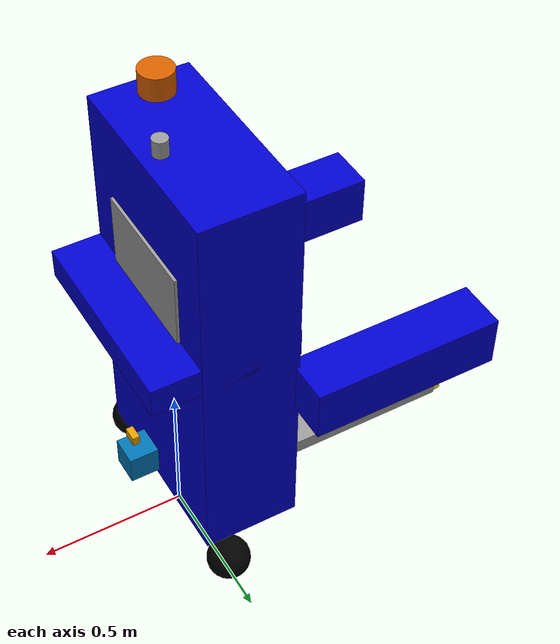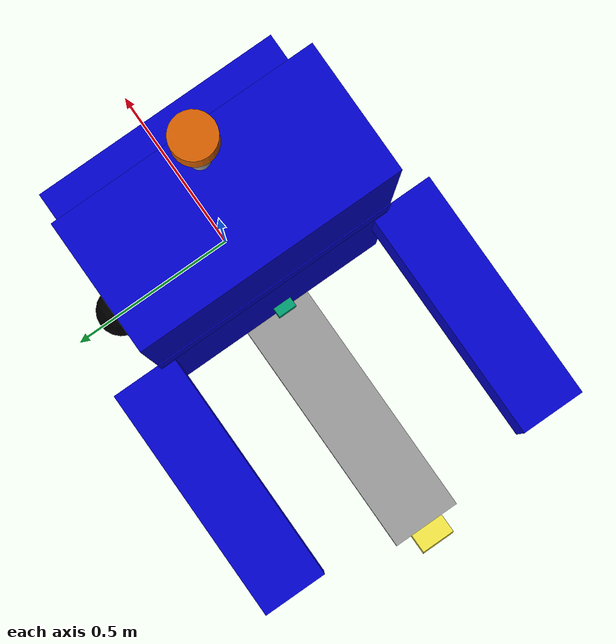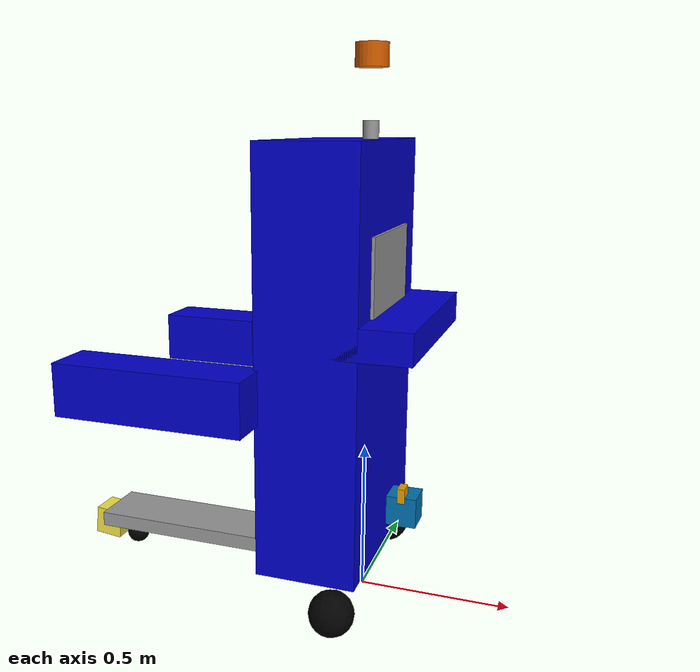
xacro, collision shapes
<?xml version="1.0"?>
<robot name="deliverybot"
    xmlns:xacro="http://wiki.ros.org/xacro">

    <!-- basic shapes -->
    <xacro:include filename="$(find urdf_basic_shapes)/urdf/basic_shapes.urdf.xacro"/>

    <link name="base_footprint"/>

    <!--cubic base_link -->
    <xacro:cube name="base_link" x=".325" y=".66" z="1.350" ori="-.0975 0 .75" rpy="0 0 0" rgb="Blue" m="10" friction="${standard_friction}"/>
    <joint name="base_joint" type="fixed">
        <parent link="base_footprint"/>
        <child link="base_link"/>
        <origin xyz="0 0 .075" rpy="0 0 0"/>
    </joint>

    <!-- cube -->
    <xacro:cube name="cube" x=".490" y=".66" z=".100" ori="-.0175 0 .780" rpy="0 0 0" rgb="Blue" m="10" friction="${standard_friction}"/>
    <joint name="cube_joint" type="fixed">
        <parent link="base_link"/>
        <child link="cube"/>
        <origin xyz="0 0 0.075" rpy="0 0 0"/>
    </joint>

    <!-- cylinder -->
    <xacro:cylinder_shape name="cylinder" r="0.025" h=".100" ori="0 0 0" rpy="0 0 0" rgb="Grey" m=".1" friction="${standard_friction}"/>
    <joint name="joint_cylinder" type="fixed">
        <parent link="base_link"/>
        <child link="cylinder"/>
        <origin xyz="0 0 1.43" rpy="0 0 0"/>
    </joint>

    <!-- hands -->
    <xacro:cube name="handR" x=".6365" y=".171" z=".175" ori="-${.6365/2}  0 ${.175/2}" rpy="0 0 0" rgb="Blue" m="10" friction="${standard_friction}"/>
    <joint name="handR_joint" type="fixed">
        <parent link="base_link"/>
        <child link="handR"/>
        <origin xyz="-.2475 -.3775 0.575" rpy="0 0 0"/>
    </joint>
    <xacro:cube name="handL" x=".6365" y=".171" z=".175" ori="-${.6365/2} 0 ${.175/2}" rpy="0 0 0" rgb="Blue" m="10" friction="${standard_friction}"/>
    <joint name="handL_joint" type="fixed">
        <parent link="base_link"/>
        <child link="handL"/>
        <origin xyz="-.2475 .3775 0.575" rpy="0 0 0"/>
    </joint>

    <!-- tail -->
    <xacro:cube name="tail" x="0.97" y=".2" z=".05" ori="-${0.97/2} 0 0" rpy="0 0 0" rgb="Grey" m="3" friction="${standard_friction}"/>
    <joint name="tail_joint" type="fixed">
        <parent link="base_link"/>
        <child link="tail"/>
        <origin xyz="0 0 0.05" rpy="0 0 0"/>
    </joint>

    <!-- cubic screen -->
    <xacro:cube name="screen" x=".15" y=".4" z=".3" ori="0 0 0" rpy="0 0 0" rgb="Grey" m=".1" friction="${standard_friction}"/>
    <joint name="screen_joint" type="fixed">
        <parent link="base_link"/>
        <child link="screen"/>
        <origin xyz="0 0 1" rpy="0 0 0"/>
    </joint>

    <!-- diff drive -->
    <!-- the parent link should be the center of wheel axis -->
    <xacro:include filename="$(find urdf_basic_shapes)/urdf/diff_wheel.urdf.xacro"/>
    <xacro:diff_wheel wheeldiam="0.145" h=".035" wheel_separation=".7" parent="base_link" friction="2000" rgb="Black" odom_topic="odom" pub_tf="false"/>

    <!-- caster wheel back -->
    <xacro:ball name="casterwheel_back" r="0.04" ori="0 0 0" rpy="0 0 0" rgb="Black" m="1" friction="${sliding_friction}"/>
    <joint name="joint_casterwheel_back" type="fixed">
        <parent link="base_link"/>
        <child link="casterwheel_back"/>
        <origin xyz="-.884 0 -.03" rpy="0 0 0"/>
    </joint>

    <!-- Hokuyo Laser Back-->
    <xacro:include filename="$(find urdf_basic_shapes)/sensors/hokuyo.urdf.xacro"/>
    <xacro:hokuyo name="scan_back" xyz="-0.98147 0 0.011" rpy="${pi} -${pi/30} ${pi}" parent="base_link" min_a="${-pi}" max_a="${pi}" topic="/lidarBack/scan"/>
    <!-- Hokuyo Laser Front-->
    <xacro:hokuyo name="scan_front" xyz=".14 0.0 0.23" rpy="0 0 0" parent="base_link" min_a="${-pi}" max_a="${pi}"  topic="/lidarFront/scan"/>

    <!-- TOP 3D Olei Lidar  -->
    <xacro:include filename="$(find urdf_basic_shapes)/sensors/velodyne.urdf.xacro"/>
    <xacro:velodyne16 name="olei_lidar" xyz="0 0 1.635" rpy="0 0 0" parent="base_link"/>
    <!-- add scan topic to velodyne lidar-->
    <!-- VERTICAL 3D Olei Lidar  -->

    <!-- imu -->
    <xacro:include filename="$(find urdf_basic_shapes)/sensors/imu.urdf.xacro"/>
    <xacro:imu name="imu" xyz="0 0 0" rpy="0 0 0" parent="base_link"/>

    <!-- depth_cam -->

    <!-- usb_cam -->
    <xacro:include filename="$(find urdf_basic_shapes)/sensors/usb_cam.urdf.xacro" />
    <xacro:usb_cam name="cameraF_down" xyz="0.140 -0.03 ${0.3625-0.075}" rpy="0.0 0.0 0.0" parent="base_link" rate="6" />
    <xacro:usb_cam name="cameraB" xyz="-.3 0 ${.7045-.075}" rpy="0 0 ${pi}" parent="base_link" rate="6" />

    <!-- Sonar -->

</robot>

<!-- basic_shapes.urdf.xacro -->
<robot name="basic_shapes" xmlns:xacro="http://wiki.ros.org/xacro">
  <!-- basic inertia -->
  <xacro:include filename="$(find urdf_basic_shapes)/urdf/inertia.urdf.xacro"/>
  <!-- basic material -->
  <xacro:include filename="$(find urdf_basic_shapes)/urdf/material.urdf.xacro"/>
  <!-- basic shapes gazebo-->
  <xacro:include filename="$(find urdf_basic_shapes)/urdf/basic_shapes.gazebo.xacro"/>

  <!-- constants -->
  <xacro:property name="update_rate" value="50" />

  <xacro:macro name="cube" params="name x y z ori rpy rgb m friction">
    <link name="${name}">
        <visual>
          <origin xyz="${ori}" rpy="${rpy}"/>
          <geometry>
              <box size="${x} ${y} ${z}"/>
          </geometry>
          <material name="${rgb}"/>
        </visual>
        <collision>
        <origin xyz="${ori}" rpy="${rpy}" />
        <geometry>
            <box size="${x} ${y} ${z}" />
        </geometry>
        </collision>
        <xacro:solid_cuboid_inertia m="${m}" h="${y}" d="${z}" w="${x}"/>
    </link>
    <xacro:gazebo_params name="${name}" rgb="${rgb}" friction="${friction}"/>
  </xacro:macro>

  <xacro:macro name="ball" params="name r ori rpy rgb m friction">
    <link name="${name}">
        <visual>
          <origin xyz="${ori}" rpy="${rpy}"/>
          <geometry>
              <sphere radius="${r}"/>
          </geometry>
          <material name="${rgb}"/>
        </visual>
        <collision>
        <origin xyz="${ori}" rpy="${rpy}" />
        <geometry>
            <sphere radius="${r}" />
        </geometry>
        </collision>
        <xacro:solid_sphere_inertia m="${m}" r="${r}"/>
    </link>
    <xacro:gazebo_params name="${name}" rgb="${rgb}" friction="${friction}"/>
  </xacro:macro>

  <xacro:macro name="cylinder_shape" params="name r h ori rpy rgb m friction">
    <link name="${name}">
        <visual>
          <origin xyz="${ori}" rpy="${rpy}"/>
          <geometry>
              <cylinder radius="${r}" length="${h}"/>
          </geometry>
          <material name="${rgb}"/>
        </visual>
        <collision>
        <origin xyz="${ori}" rpy="${rpy}" />
        <geometry>
            <cylinder radius="${r}" length="${h}" />
        </geometry>
        </collision>
        <xacro:solid_cylinder_inertia m="${m}" r="${r}" h="${h}"/>
    </link>
    <xacro:gazebo_params name="${name}" rgb="${rgb}" friction="${friction}"/>
  </xacro:macro>

  <xacro:macro name="wheel" params="name r h ori rpy rgb m friction">
    <link name="${name}">
        <visual>
          <origin xyz="${ori}" rpy="${rpy}"/>
          <geometry>
              <cylinder radius="${r}" length="${h}"/>
          </geometry>
          <material name="${rgb}"/>
        </visual>
        <collision>
        <origin xyz="${ori}" rpy="${rpy}" />
        <geometry>
            <sphere radius="${r}" />   <!--use shpere here to reduce the point of contract to a infinit small point-->
        </geometry>
        </collision>
        <xacro:solid_cylinder_inertia m="${m}" r="${r}" h="${h}"/>
    </link>
    <xacro:gazebo_params name="${name}" rgb="${rgb}" friction="${friction}"/>
  </xacro:macro>

</robot>

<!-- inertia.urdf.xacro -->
<robot xmlns:xacro="http://wiki.ros.org/xacro">
  <!-- source en.wikipedia.org/wiki/List_of_moments_of_inertia-->

  <!-- TODO Solid sphere of radius r and mass m-->
  <xacro:macro name="solid_sphere_inertia" params="m r">
  <inertial>
      <mass value="${m}" />
    <inertia  ixx="${(2*r*r*m)/5}" ixy = "0" ixz = "0"
              iyy="${(2*r*r*m)/5}" iyz = "0"
              izz="${(2*r*r*m)/5}"
     />
     </inertial>
  </xacro:macro>

  <!-- TODO Hollow sphere of radius r and mass m-->
  <xacro:macro name="hollow_sphere_inertia" params="m r">
  <inertial>
      <mass value="${m}" />
    <inertia  ixx="${(2*r*r*m)/3}" ixy = "0" ixz = "0"
              iyy="${(2*r*r*m)/3}" iyz = "0"
              izz="${(2*r*r*m)/3}"
     />
     </inertial>
  </xacro:macro>

  <!-- TODO Solid ellipsoid of semi-axes a, b, c and mass m-->
  <xacro:macro name="ellipsoid_semi_axes_inertia" params="a b c m r">
  <inertial>
      <mass value="${m}" />
    <inertia  ixx="${(m*(b*b+c*c))/5}" ixy = "0" ixz = "0"
              iyy="${(m*(a*a+c*c))/5}" iyz = "0"
              izz="${(m*(a*a+b*b))/5}"
     />
     </inertial>
  </xacro:macro>

  <!-- TODO Right circular cone with radius r, height h and mass m, about the apex -->
  <xacro:macro name="right_circular_cone_inertia" params="m r h">
  <inertial>
      <mass value="${m}" />
    <inertia  ixx="${((3*m*(h*h))/5)+((3*m*(r*r))/20)}" ixy = "0" ixz = "0"
              iyy="${((3*m*(h*h))/5)+((3*m*(r*r))/20)}" iyz = "0"
              izz="${(3*m*(r*r))/10}"
     />
     </inertial>
  </xacro:macro>

  <!-- TODO Solid cuboid of width w, height h, depth d, and mass m -->
  <!-- yes, axis in solid_cuboid_inertia are changed, w relates to X axis, d to Z axis, and h to Y axis -->
  <!-- Keep this comment -->
  <xacro:macro name="solid_cuboid_inertia" params="m h d w">
    <inertial>
      <mass value="${m}" />
        <inertia  ixx="${(m*(h*h+d*d))/12}" ixy = "0" ixz = "0"
                iyy="${(m*(w*w+d*d))/12}" iyz = "0"
                izz="${(m*(w*w+h*h))/12}"
        />
    </inertial>
  </xacro:macro>

  <!-- TODO Solid cylinder of radius r, height h and mass m -->
  <xacro:macro name="solid_cylinder_inertia" params="m r h">
  <inertial>
      <mass value="${m}" />
    <inertia  ixx="${m*(3*r*r+h*h)/12}" ixy = "0" ixz = "0"
              iyy="${m*(3*r*r+h*h)/12}" iyz = "0"
              izz="${m*r*r/2}"
     />
     </inertial>
  </xacro:macro>

    <!-- TODO Thick-walled cylindrical tube with open ends, of inner radius r1, outer radius r2, length h and mass m -->
    <xacro:macro name="thick_walled_cylinder_inertia" params="m r1 r2 h">
    <inertial>
      <mass value="${m}" />
    <inertia  ixx="${m*((3*(r1*r1+r2*r2))+(h*h))/12}" ixy = "0" ixz = "0"
              iyy="${m*((3*(r1*r1+r2*r2))+(h*h))/12}" iyz = "0"
              izz="${m*(r1*r1+r2*r2)/2}"
     />
     </inertial>
  </xacro:macro>

</robot>

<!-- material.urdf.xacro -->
<robot xmlns:xacro="http://wiki.ros.org/xacro">

  <material name="Red">
    <color rgba="1 0 0 1"/>
  </material>
  <material name="Green">
    <color rgba="0 1 0 1"/>
  </material>
  <material name="Blue">
    <color rgba="0 0 0.8 1"/>
  </material>
  <material name="Black">
    <color rgba="0 0 0 1"/>
  </material>
  <material name="White">
    <color rgba="1 1 1 1"/>
  </material>
  <material name="Gray">
    <color rgba="0.8 0.8 0.8 1"/>
  </material>
  <material name="Yellow">
    <color rgba="1 1 0 1"/>
  </material>
  <material name="Orange">
    <color rgba="1 0.5 0 1"/>
  </material>
  <material name="Brown">
    <color rgba="0.6 0.4 0.2 1"/>
  </material>
  <material name="Purple">
    <color rgba="0.5 0 0.5 1"/>
  </material>
  <material name="Cyan">
    <color rgba="0 1 1 1"/>
  </material>

</robot>

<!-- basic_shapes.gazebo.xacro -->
<robot name="basic_shapes"
  xmlns:xacro="http://www.ros.org/wiki/xacro">
  <xacro:arg name="laser_visual" default="true"/>

  <xacro:property name="update_rate" value="10" />

  <xacro:property name="standard_friction" value="0.2" />
  <xacro:property name="wheel_friction" value="10000.0" />
  <xacro:property name="sliding_friction" value="0.1" />

  <xacro:macro name="gazebo_params" params="name rgb friction">
    <gazebo reference="${name}">
      <material>Gazebo/${rgb}</material>
      <mu1>${friction}</mu1>
      <mu2>${friction}</mu2>
      <kp value="10000000.0" />
      <kd value="1.0" />
      <minDepth>0.001</minDepth>
      <maxVel>0.1</maxVel>
      <fdir1>1 0 0</fdir1>
    </gazebo>
  </xacro:macro>

  <!-- Gazebo plugin for ROS Control -->

</robot>

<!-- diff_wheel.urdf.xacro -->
<robot name="diff_wheel" xmlns:xacro="http://wiki.ros.org/xacro">

    <!-- differential drive macro -->
    <xacro:macro name="diff_wheel" params=" wheeldiam h wheel_separation parent friction rgb odom_topic:=odom pub_tf:=true">
        <xacro:wheel name="left_wheel" r="${wheeldiam/2}" h="${h}" ori="0 0 0" rpy="0 0 0" rgb="${rgb}" m="0.1" friction="${friction}"/>
        <joint name="left_wheel_joint" type="continuous">
            <axis xyz="0 0 1" rpy="0 0 0" />
            <parent link="${parent}"/>
            <child link="left_wheel"/>
            <origin xyz="0 ${wheel_separation/2} 0" rpy="${-pi/2} 0 0"/>
        </joint>

        <xacro:wheel name="right_wheel" r="${wheeldiam/2}" h="${h}" ori="0 0 0" rpy="0 0 0" rgb="${rgb}" m="0.1" friction="${friction}"/>
        <joint name="right_wheel_joint" type="continuous">
            <axis xyz="0 0 1" rpy="0 0 0" />
            <parent link="${parent}"/>
            <child link="right_wheel"/>
            <origin xyz="0 ${-wheel_separation/2} 0" rpy="${-pi/2} 0 0"/>
        </joint>

        <gazebo>
        <plugin name="diff_drive_controller" filename="libgazebo_ros_diff_drive.so">

            <!-- Plugin update rate in Hz -->
            <left_joint>left_wheel_joint</left_joint>
            <right_joint>right_wheel_joint</right_joint>

            <!-- kinematics -->
            <wheel_separation>${wheel_separation}</wheel_separation>
            <wheel_diameter>${wheeldiam}</wheel_diameter>

            <!-- limits -->
            <max_wheel_acceleration>1.0</max_wheel_acceleration>
            <max_wheel_torque>20</max_wheel_torque>

            <!-- topics and frames -->
            <command_topic>cmd_vel</command_topic>
            <odometry_topic>${odom_topic}</odometry_topic>
            <odometry_frame>odom</odometry_frame>
            <robot_base_frame>base_link</robot_base_frame>
            <!-- Odometry source, 0 for ENCODER, 1 for WORLD, defaults to WORLD -->

            <!-- output -->
            <publish_odom>true</publish_odom>
            <publish_odom_tf>${pub_tf}</publish_odom_tf>
            <publish_wheel_tf>false</publish_wheel_tf>
        </plugin>

        <plugin name="turtlebot3_joint_state" filename="libgazebo_ros_joint_state_publisher.so">
            <ros>
                <remapping>~/out:=joint_states</remapping>
            </ros>
            <update_rate>30</update_rate>
            <joint_name>left_wheel_joint</joint_name>
            <joint_name>right_wheel_joint</joint_name>
        </plugin>

        </gazebo>

    </xacro:macro>

</robot>

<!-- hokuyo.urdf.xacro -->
<robot name="hokuyo"
    xmlns:xacro="http://wiki.ros.org/xacro">
    <xacro:macro name="hokuyo" params="name parent xyz rpy min_a max_a topic=scan">
        <link name="${name}">
            <collision>
                <origin xyz="0 0 0" rpy="0 0 0"/>
                <geometry>
                    <box size="0.1 0.1 0.1"/>
                </geometry>
            </collision>

            <visual>
                <origin xyz="0 0 0" rpy="0 0 0"/>
                <geometry>
                    <mesh filename="package://urdf_basic_shapes/meshes/hokuyo.dae"/>
                </geometry>
            </visual>

            <inertial>
                <mass value="1e-5" />
                <origin xyz="0 0 0" rpy="0 0 0"/>
                <inertia ixx="1e-6" ixy="0" ixz="0" iyy="1e-6" iyz="0" izz="1e-6" />
            </inertial>
        </link>

        <joint name="${name}_joint" type="fixed">
            <axis xyz="0 1 0" />
            <origin xyz="${xyz}" rpy="${rpy}"/>
            <parent link="${parent}"/>
            <child link="${name}"/>
        </joint>

        <!-- hokuyo -->
        <gazebo reference="${name}">
            <sensor type="ray" name="${name}_hokuyo_sensor">
                <pose>0 0 0 0 0 0</pose>
                <visualize>true</visualize>
                <update_rate>10</update_rate>
                <ray>
                    <scan>
                        <horizontal>
                            <samples>720</samples>
                            <resolution>1</resolution>
                            <min_angle>${min_a}</min_angle>
                            <max_angle>${max_a}</max_angle>
                        </horizontal>
                    </scan>
                    <range>
                        <min>0.10</min>
                        <max>30.0</max>
                        <resolution>0.01</resolution>
                    </range>
                    <noise>
                        <type>gaussian</type>
                        <mean>0.0</mean>
                        <stddev>0.01</stddev>
                    </noise>
                </ray>
                <plugin name="gazebo_ros_${name}_controller" filename="libgazebo_ros_laser.so">
                    <topicName>${topic}</topicName>
                    <frameName>${name}</frameName>
                </plugin>
            </sensor>
        </gazebo>

    </xacro:macro>
</robot>

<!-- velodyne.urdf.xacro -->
<robot name="velodyne" xmlns:xacro="http://wiki.ros.org/xacro">

    <xacro:macro name="velodyne16" params="name parent xyz rpy">
        <xacro:arg name="gpu" default="false"/>
        <xacro:property name="gpu" value="$(arg gpu)" />
        <xacro:arg name="organize_cloud" default="false"/>
        <xacro:property name="organize_cloud" value="$(arg organize_cloud)" />

        <xacro:include filename="$(find velodyne_description)/urdf/VLP-16.urdf.xacro"/>
        <xacro:VLP-16 parent="${parent}" name="${name}" topic="${name}_points" organize_cloud="${organize_cloud}" hz="10" samples="440" gpu="${gpu}">
            <origin xyz="${xyz}" rpy="${rpy}" />
        </xacro:VLP-16>
    </xacro:macro>

</robot>

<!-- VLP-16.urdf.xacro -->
<robot xmlns:xacro="http://www.ros.org/wiki/xacro" name="VLP-16">
  <xacro:property name="M_PI" value="3.1415926535897931"/>
  <xacro:macro name="VLP-16" params="*origin parent:=base_link name:=velodyne topic:=/velodyne_points hz:=10 lasers:=16 samples:=1875 collision_range:=0.3 min_range:=0.9 max_range:=130.0 noise:=0.008 min_angle:=-${M_PI} max_angle:=${M_PI} gpu:=false">

    <joint name="${name}_base_mount_joint" type="fixed">
      <xacro:insert_block name="origin"/>
      <parent link="${parent}"/>
      <child link="${name}_base_link"/>
    </joint>

    <link name="${name}_base_link">
      <inertial>
        <mass value="0.83"/>
        <origin xyz="0 0 0.03585"/>
        <inertia ixx="${(0.83 * (3.0*0.0516*0.0516 + 0.0717*0.0717)) / 12.0}" ixy="0" ixz="0" iyy="${(0.83 * (3.0*0.0516*0.0516 + 0.0717*0.0717)) / 12.0}" iyz="0" izz="${0.5 * 0.83 * (0.0516*0.0516)}"/>
      </inertial>
      <visual>
        <geometry>
          <mesh filename="file://$(find velodyne_description)/meshes/VLP16_base_1.dae" />
        </geometry>
      </visual>
      <visual>
        <geometry>
          <mesh filename="file://$(find velodyne_description)/meshes/VLP16_base_2.dae" />
        </geometry>
      </visual>
      <collision>
        <origin rpy="0 0 0" xyz="0 0 0.03585"/>
        <geometry>
          <cylinder radius="0.0516" length="0.0717"/>
        </geometry>
      </collision>
    </link>

    <joint name="${name}_base_scan_joint" type="fixed">
      <origin xyz="0 0 0.0377" rpy="0 0 0"/>
      <parent link="${name}_base_link"/>
      <child link="${name}"/>
    </joint>

    <link name="${name}">
      <inertial>
        <mass value="0.01"/>
        <origin xyz="0 0 0"/>
        <inertia ixx="1e-7" ixy="0" ixz="0" iyy="1e-7" iyz="0" izz="1e-7"/>
      </inertial>
      <visual>
        <origin xyz="0 0 -0.0377"/>
        <geometry>
          <mesh filename="$(find velodyne_description)/meshes/VLP16_scan.dae" />
        </geometry>
      </visual>
    </link>

    <!-- Gazebo requires the velodyne_gazebo_plugins package -->
    <gazebo reference="${name}">
      <xacro:if value="${gpu}">
        <sensor type="gpu_ray" name="${name}-VLP16">
          <pose>0 0 0 0 0 0</pose>
          <visualize>false</visualize>
          <update_rate>${hz}</update_rate>
          <ray>
            <scan>
              <horizontal>
                <samples>${samples}</samples>
                <resolution>1</resolution>
                <min_angle>${min_angle}</min_angle>
                <max_angle>${max_angle}</max_angle>
              </horizontal>
              <vertical>
                <samples>${lasers}</samples>
                <resolution>1</resolution>
                <min_angle>-${15.0*M_PI/180.0}</min_angle>
                <max_angle>
                  ${15.0*M_PI/180.0}</max_angle>
              </vertical>
            </scan>
            <range>
              <min>${collision_range}</min>
              <max>${max_range+1}</max>
              <resolution>0.001</resolution>
            </range>
            <noise>
              <type>gaussian</type>
              <mean>0.0</mean>
              <stddev>0.0</stddev>
            </noise>
          </ray>
          <plugin name="gazebo_ros_laser_controller" filename="libgazebo_ros_velodyne_laser.so">
            <ros>
                <remapping>~/out:=${topic}</remapping>
            </ros>
            <frame_name>${name}</frame_name>
            <min_range>${min_range}</min_range>
            <max_range>${max_range}</max_range>
            <gaussianNoise>${noise}</gaussianNoise>
          </plugin>
        </sensor>
      </xacro:if>
      <xacro:unless value="${gpu}">
        <sensor type="ray" name="${name}-VLP16">
          <pose>0 0 0 0 0 0</pose>
          <visualize>false</visualize>
          <update_rate>${hz}</update_rate>
          <ray>
            <scan>
              <horizontal>
                <samples>${samples}</samples>
                <resolution>1</resolution>
                <min_angle>${min_angle}</min_angle>
                <max_angle>${max_angle}</max_angle>
              </horizontal>
              <vertical>
                <samples>${lasers}</samples>
                <resolution>1</resolution>
                <min_angle>-${15.0*M_PI/180.0}</min_angle>
                <max_angle>
                  ${15.0*M_PI/180.0}</max_angle>
              </vertical>
            </scan>
            <range>
              <min>${collision_range}</min>
              <max>${max_range+1}</max>
              <resolution>0.001</resolution>
            </range>
            <noise>
              <type>gaussian</type>
              <mean>0.0</mean>
              <stddev>0.05</stddev>
            </noise>
          </ray>
          <plugin name="gazebo_ros_laser_controller" filename="libgazebo_ros_velodyne_laser.so">
            <ros>
                <remapping>~/out:=${topic}</remapping>
            </ros>
            <frame_name>${name}</frame_name>
            <min_range>${min_range}</min_range>
            <max_range>${max_range}</max_range>
            <gaussianNoise>${noise}</gaussianNoise>
          </plugin>
        </sensor>
      </xacro:unless>
    </gazebo>

  </xacro:macro>
</robot>

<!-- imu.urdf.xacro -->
<robot name="imu" xmlns:xacro="http://wiki.ros.org/xacro">
    <xacro:macro name="imu" params="name parent xyz rpy">

        <link name="${name}" />

        <joint name="${name}_joint" type="fixed">
            <axis xyz="0 0 0" />
            <origin xyz="${xyz}" rpy="${rpy}" />
            <parent link="${parent}" />
            <child link="${name}" />
        </joint>

        <!-- imu -->
        <gazebo reference="${name}">
            <gravity>true</gravity>
            <sensor name="${name}" type="imu">
                <always_on>true</always_on>
                <update_rate>200</update_rate>
                <visualize>true</visualize>
                <topic>${name}</topic>
                <plugin filename="libgazebo_ros_imu_sensor.so" name="imu_plugin">
                    <topicName>${name}</topicName>
                    <remapping>~/out:=${name}</remapping>
                    <bodyName>${name}</bodyName>
                    <updateRateHZ>10.0</updateRateHZ>
                    <gaussianNoise>0.0</gaussianNoise>
                    <xyzOffset>0 0 0</xyzOffset>
                    <rpyOffset>0 0 0</rpyOffset>
                    <frame_name>${name}</frame_name>
                    <initialOrientationAsReference>false</initialOrientationAsReference>
                </plugin>
                <pose>0 0 0 0 0 0</pose>
            </sensor>
        </gazebo>

    </xacro:macro>
</robot>

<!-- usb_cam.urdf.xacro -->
<robot name="usb_cam" xmlns:xacro="http://wiki.ros.org/xacro">
    <xacro:macro name="usb_cam" params="name parent xyz rpy rate:=24">

    <link name="${name}">
      <collision>
          <origin xyz="0.0 0 0." rpy="0 0 0" />
          <geometry>
              <box size="0.025 0.05 0.05"/>
          </geometry>
      </collision>

      <visual>
          <origin xyz="0.0 0 0.0" rpy="0 ${pi/2} 0" />
          <geometry>
              <mesh filename="file://$(find urdf_basic_shapes)/meshes/usb_cam.dae" scale="0.001 0.001 0.001" />
          </geometry>
      </visual>

      <inertial>
          <mass value="1e-5" />
          <origin xyz="0.0 0 0.0" rpy="0 0 0" />
          <inertia ixx="1e-6" ixy="0" ixz="0" iyy="1e-6" iyz="0" izz="1e-6" />
      </inertial>
  </link>

    <joint name="${name}_joint" type="fixed">
      <parent link="${parent}"/>
      <child link="${name}"/>
      <origin xyz="${xyz}" rpy="${rpy}"/>
    </joint>

    <link name="${name}_optical_frame"/>
    <joint name="${name}_optical_joint" type="fixed">
      <parent link="${name}"/>
      <child link="${name}_optical_frame"/>
      <origin xyz="0.0 0.0 0.0" rpy="${-pi/2} 0.0 ${-pi/2}"/>
    </joint>

    <gazebo reference="${name}">
      <sensor name="${name}" type="camera">
        <visualize>true</visualize>
        <update_rate>${rate}</update_rate>
        <camera name="${name}">
          <horizontal_fov>1.047198</horizontal_fov>
          <image>
            <width>640</width>
            <height>480</height>
            <format>R8G8B8</format>
          </image>
          <clip>
            <near>0.05</near>
            <far>30</far>
          </clip>
          <noise>
          <type>gaussian</type>
          <!-- Noise is sampled independently per pixel on each frame.
               That pixel's noise value is added to each of its color
               channels, which at that point lie in the range [0,1]. -->
          <mean>0.0</mean>
          <stddev>0.007</stddev>
        </noise>
        </camera>
        <plugin name="${name}_controller" filename="libgazebo_ros_camera.so">
          <baseline>0.2</baseline>
          <alwaysOn>true</alwaysOn>
          <updateRate>0.0</updateRate>
          <frame_name>${name}_optical_frame</frame_name>
          <distortionK1>0</distortionK1>
          <distortionK2>0</distortionK2>
          <distortionK3>0</distortionK3>
          <distortionT1>0</distortionT1>
          <distortionT2>0</distortionT2>
        </plugin>
      </sensor>
    </gazebo>

  </xacro:macro>
</robot>
